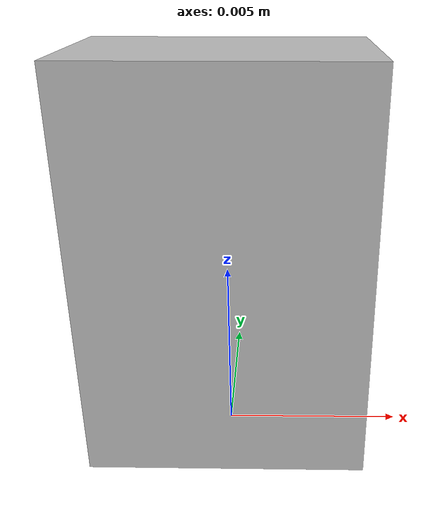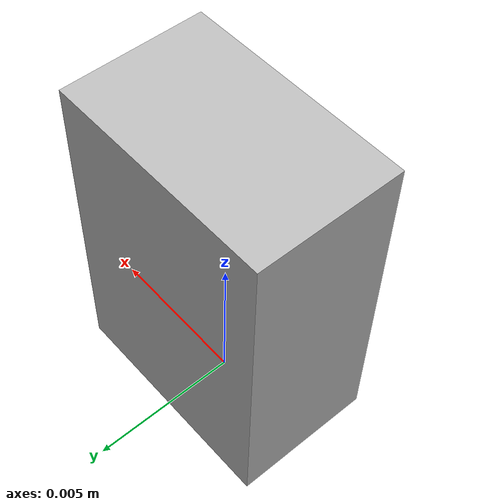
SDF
<?xml version='1.0'?>
<sdf version='1.5'>
  <model name='tomato_sauce'>
    <static>true</static>
    <link name="link">
      <visual name="visual">
            <geometry>
                <mesh>
                    <scale>0.1 0.1 0.1</scale>
                    <uri>model://tomato_sauce/meshes/tomato_sauce.dae</uri>
                </mesh>
            </geometry>
        </visual>
        <collision name="collision">
            <geometry>
                <mesh>
                    <scale>0.1 0.1 0.1</scale>
                    <uri>model://tomato_sauce/meshes/tomato_sauce.dae</uri>
                </mesh>
            </geometry>
        </collision>
    </link>
  </model>
</sdf>
